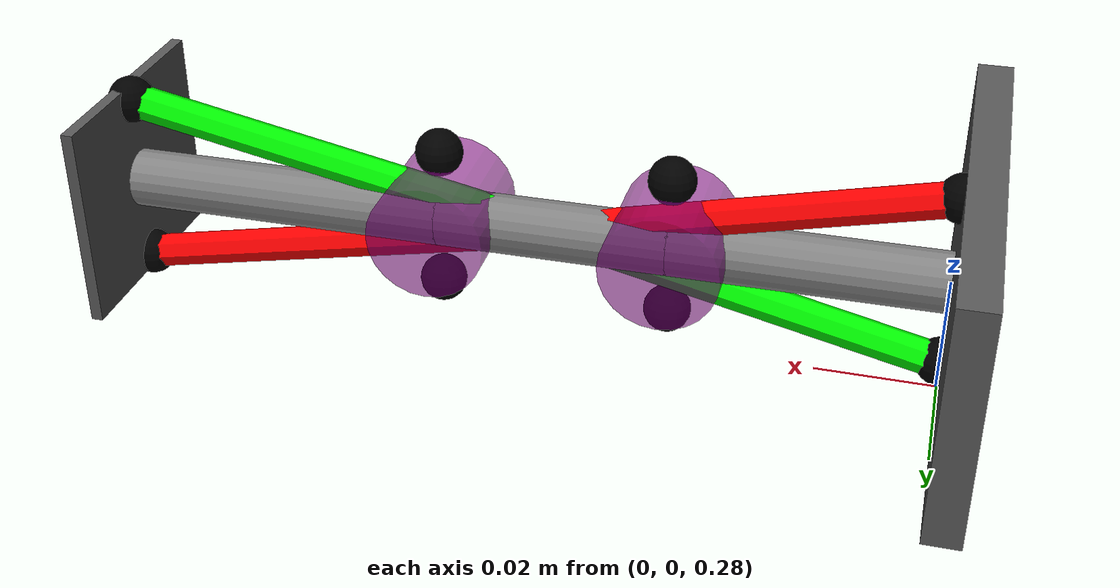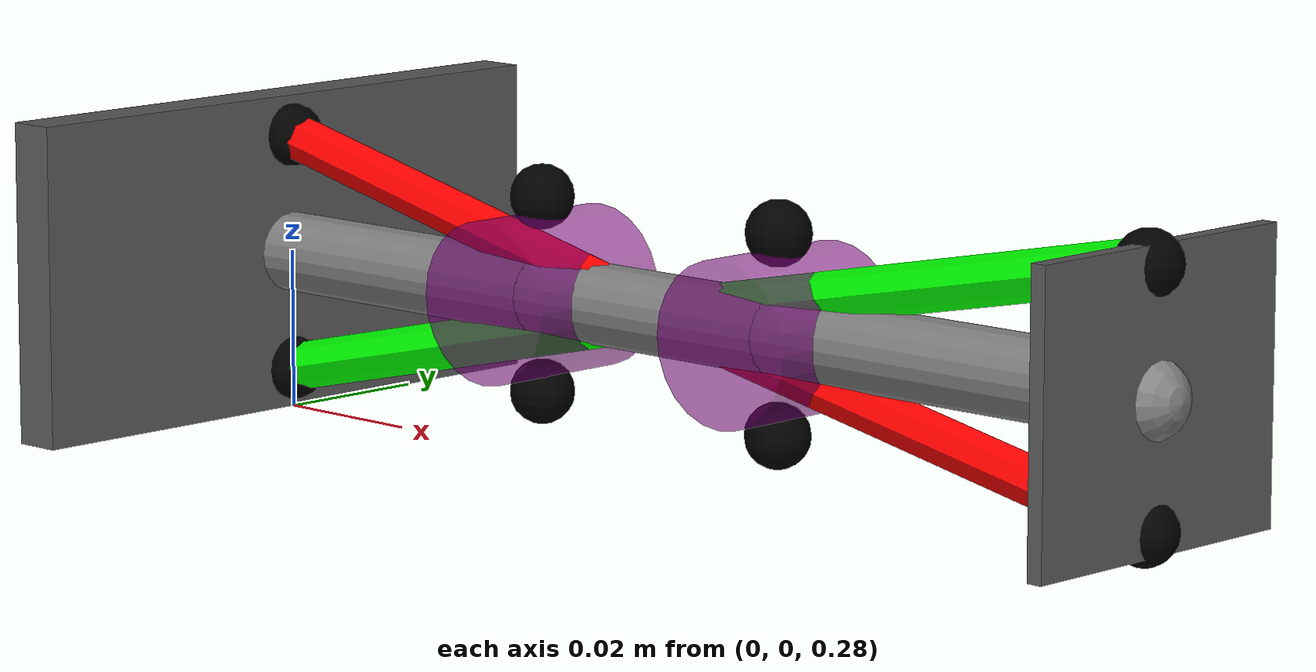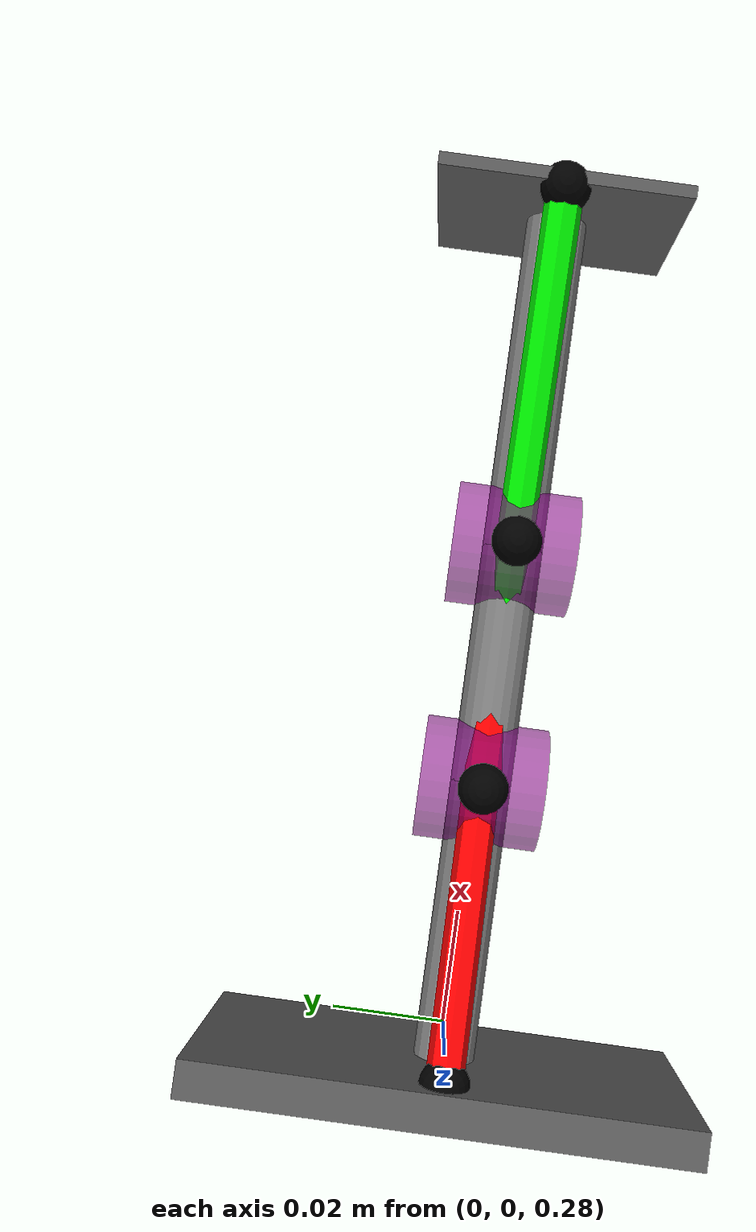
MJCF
<mujoco model="XML_Model_with_Motor_472268">
    <default>
        <joint axis="0 1 0" limited="true" range="-90 90" />
        <geom type="capsule" size=".005" />
        <site rgba="0.5 0.5 0.5 1" />
        <default class="visual_cylinder">
            <geom type="cylinder" fromto="0 .01 0 0 -.01 0" size=".01" rgba=".5 .0 .5 .5" />
        </default>
    </default>

    <statistic center="0.065 0 0.285" extent="0.225" />

    <visual>
        <headlight diffuse="0.6 0.6 0.6" ambient="0.25 0.25 0.25" />
        <rgba haze="0.05 0.1 0.15 1" />
        <global azimuth="85" elevation="-10" />
    </visual>

    <asset>
        <texture type="skybox" builtin="gradient" rgb1="0.3 0.5 0.7" rgb2="0.1 0.2 0.3" width="512"
            height="512" />
        <texture type="2d" name="groundplane" builtin="checker" mark="edge" rgb1="0.5 0.6 0.7"
            rgb2="0.005 0.005 0.005" markrgb="0.8 0.8 0.8" width="300" height="300" />
        <material name="groundplane" texture="groundplane" texuniform="true" texrepeat="10 10"
            reflectance="0.2" />
    </asset>

    <worldbody>
        <light pos="0 0 1.5" />
        <light pos="0 0 3" dir="0 0 -1" directional="true" />
        <geom name="floor" size="0 0 .125" type="plane" material="groundplane" conaffinity="15"
            condim="3" />

        <body pos="0 0 .3">
            <geom name='left_wall' type="box" size="0.003 0.04 0.02"
                rgba="0.35 0.35 0.35 1" pos=" -0.003 0 0" />
            <geom fromto="0 0 0 .045 0 0" contype="0" conaffinity="0" density="5000" />
            <site name="s1" pos="0 0 0.015" size=".004" rgba="0 0 0 1" />
            <site name="s2" pos="0 0 -0.015" size=".004" rgba="0 0 0 1" />
            <body pos=".045 0 0">
                <joint name="A" axis="0 1 0" />
                <geom fromto="0 0 0 .039 0 0" density="5000" />
                <geom name="Pulley1" type="cylinder" fromto="0 .01 0 0 -.01 0" size=".01"
                    rgba=".5 .0 .5 .6" />
                <site name="s3" pos="0 0 0.012" size=".004" rgba="0 0 0 1" />
                <site name="s4" pos="0 0 -0.012" size=".004" rgba="0 0 0 1" />

                <site name="c1" pos=".02 0 0" size=".004" rgba="0.5 0.5 0.5 1" />

                <body pos=".039 0 0">
                    <joint name="B" axis="0 1 0" />
                    <geom name="Pulley2" type="cylinder" fromto="0 .01 0 0 -.01 0" size=".01"
                        rgba=".5 .0 .5 .6" />
                    <site name="s5" pos="0 0 -0.012" size=".004" rgba="0 0 0 1" />
                    <site name="s6" pos="0 0 0.012" size=".004" rgba="0 0 0 1" />
                    <geom fromto="0 0 0 .055 0 0" density="5000" />
                    <site name="s7" pos=".055 0 0.015" size=".004" rgba="0 0 0 1" />
                    <site name="s8" pos=".055 0 -0.015" size=".004" rgba="0 0 0 1" />
                    <body>
                        <geom name='right_wall' type="box" size="0.001 0.02 0.0175"
                            rgba="0.35 0.35 0.35 1" pos=" 0.056 0 0" />
                    </body>
                </body>
            </body>
        </body>
    </worldbody>

    <tendon>
        <spatial stiffness="10" rgba="1 0 0 1">
            <site site="s1" />
            <geom geom="Pulley1" sidesite="s3" />
            <site site="c1" />
            <geom geom="Pulley2" sidesite="s5" />
            <site site="s8" />
        </spatial>
        <spatial stiffness="10" rgba="0 1 0 1">
            <site site="s2" />
            <geom geom="Pulley1" sidesite="s4" />
            <site site="c1" />
            <geom geom="Pulley2" sidesite="s6" />
            <site site="s7" />
        </spatial>
    </tendon>

    <actuator>
        <position name="Motor B" joint="B" ctrllimited="true" ctrlrange="-1 1" gear="1" />
    </actuator>

</mujoco>
